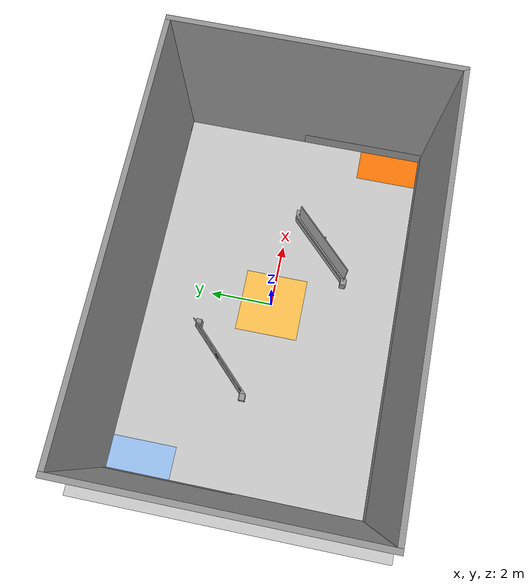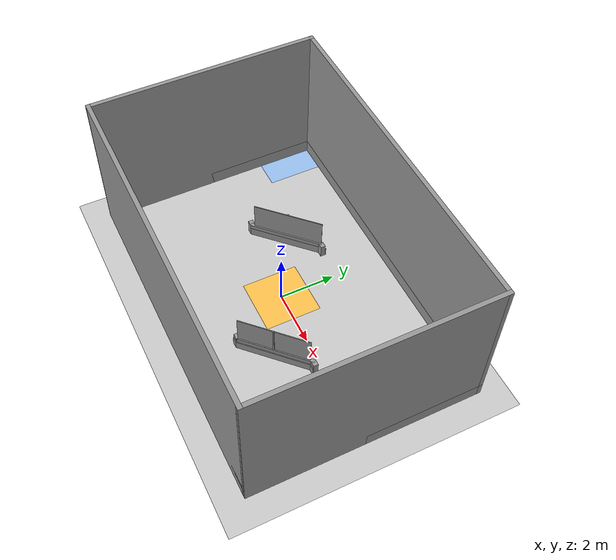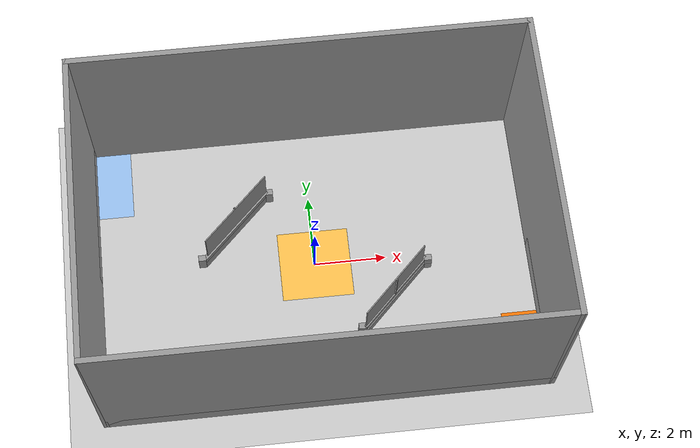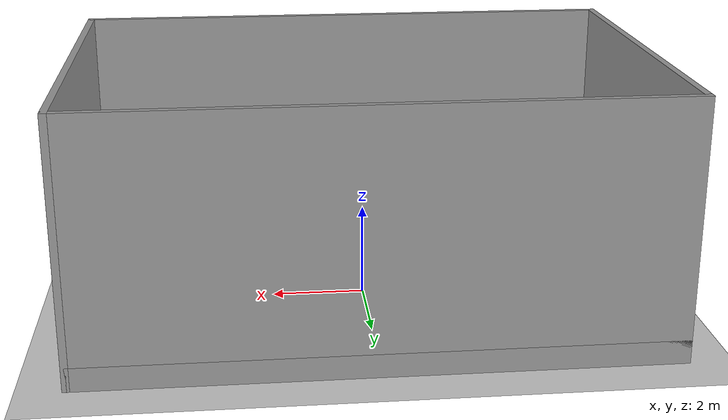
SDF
<sdf version="1.7">
 <world name="default">
  <light name="sun" type="directional">
   <pose>0 0 10 0 -0 0</pose>
   <diffuse>0.8 0.8 0.8 1</diffuse>
   <specular>0.2 0.2 0.2 1</specular>
   <attenuation>
    <range>1000</range>
    <constant>0.9</constant>
    <linear>0.01</linear>
    <quadratic>0.001</quadratic>
   </attenuation>
   <direction>-0.5 0.1 -0.9</direction>
   <spot><inner_angle>0</inner_angle><outer_angle>0</outer_angle><falloff>0</falloff></spot>
  </light>
  <model name="ground_plane">
   <static>1</static>
   <link name="link">
    <collision name="collision">
     <geometry><plane><normal>0 0 1</normal><size>100 100</size></plane></geometry>
     <surface><friction><ode><mu>100</mu><mu2>50</mu2></ode></friction></surface>
    </collision>
    <visual name="visual">
     <cast_shadows>0</cast_shadows>
     <geometry><plane><normal>0 0 1</normal><size>100 100</size></plane></geometry>
     <material>
      <script><uri>file://media/materials/scripts/gazebo.material</uri><name>Gazebo/Grey</name></script>
     </material>
    </visual>
   </link>
  </model>
  <gravity>0 0 -9.8</gravity>
  <magnetic_field>6e-06 2.3e-05 -4.2e-05</magnetic_field>
  <atmosphere type="adiabatic"/>
  <physics type="ode">
   <max_step_size>0.001</max_step_size>
   <real_time_factor>1</real_time_factor>
   <real_time_update_rate>1000</real_time_update_rate>
  </physics>
  <scene><ambient>0.4 0.4 0.4 1</ambient><background>0.7 0.7 0.7 1</background><shadows>1</shadows></scene>
  <audio><device>default</device></audio>
  <spherical_coordinates>
   <surface_model>EARTH_WGS84</surface_model>
   <latitude_deg>0</latitude_deg>
   <longitude_deg>0</longitude_deg>
   <elevation>0</elevation>
   <heading_deg>0</heading_deg>
  </spherical_coordinates>
  <model name="rmulout1.0">
   <link name="Wall_1">
    <collision name="Wall_1_Collision">
     <geometry><box><size>8.3 0.15 0.5</size></box></geometry>
     <pose>0 0 0.25 0 -0 0</pose>
    </collision>
    <visual name="Wall_1_Visual">
     <pose>0 0 0.25 0 -0 0</pose>
     <geometry><box><size>8.3 0.15 0.5</size></box></geometry>
     <material>
      <script><uri>file://media/materials/scripts/gazebo.material</uri><name>Gazebo/Grey</name></script>
      <ambient>1 1 1 1</ambient>
     </material>
     <meta><layer>0</layer></meta>
    </visual>
    <pose>-6.075 0 0 0 -0 -1.5708</pose>
   </link>
   <link name="Wall_2">
    <collision name="Wall_2_Collision">
     <geometry><box><size>12.3 0.15 0.5</size></box></geometry>
     <pose>0 0 0.25 0 -0 0</pose>
    </collision>
    <visual name="Wall_2_Visual">
     <pose>0 0 0.25 0 -0 0</pose>
     <geometry><box><size>12.3 0.15 0.5</size></box></geometry>
     <material>
      <script><uri>file://media/materials/scripts/gazebo.material</uri><name>Gazebo/Grey</name></script>
      <ambient>1 1 1 1</ambient>
     </material>
     <meta><layer>0</layer></meta>
    </visual>
    <pose>-0 -4.075 0 0 -0 0</pose>
   </link>
   <link name="Wall_3">
    <collision name="Wall_3_Collision">
     <geometry><box><size>8.3 0.15 0.5</size></box></geometry>
     <pose>0 0 0.25 0 -0 0</pose>
    </collision>
    <visual name="Wall_3_Visual">
     <pose>0 0 0.25 0 -0 0</pose>
     <geometry><box><size>8.3 0.15 0.5</size></box></geometry>
     <material>
      <script><uri>file://media/materials/scripts/gazebo.material</uri><name>Gazebo/Grey</name></script>
      <ambient>1 1 1 1</ambient>
     </material>
     <meta><layer>0</layer></meta>
    </visual>
    <pose>6.075 0 0 0 -0 1.5708</pose>
   </link>
   <link name="Wall_4">
    <collision name="Wall_4_Collision">
     <geometry><box><size>12.3 0.15 0.5</size></box></geometry>
     <pose>0 0 0.25 0 -0 0</pose>
    </collision>
    <visual name="Wall_4_Visual">
     <pose>0 0 0.25 0 -0 0</pose>
     <geometry><box><size>12.3 0.15 0.5</size></box></geometry>
     <material>
      <script><uri>file://media/materials/scripts/gazebo.material</uri><name>Gazebo/Grey</name></script>
      <ambient>1 1 1 1</ambient>
     </material>
     <meta><layer>0</layer></meta>
    </visual>
    <pose>-0 4.075 0 0 -0 3.14159</pose>
   </link>
   <static>1</static>
  </model>
  <model name="zhangai2">
   <pose>-1.24615 2.78058 0 0 -0 0</pose>
   <link name="Wall_0">
    <collision name="Wall_0_Collision">
     <geometry><box><size>2.72964 0.15 0.33</size></box></geometry>
     <pose>0 0 0.165 0 -0 0</pose>
    </collision>
    <visual name="Wall_0_Visual">
     <pose>0 0 0.165 0 -0 0</pose>
     <geometry><box><size>2.72964 0.15 0.33</size></box></geometry>
     <material>
      <script><uri>file://media/materials/scripts/gazebo.material</uri><name>Gazebo/Grey</name></script>
      <ambient>1 1 1 1</ambient>
     </material>
     <meta><layer>0</layer></meta>
    </visual>
    <pose>-0.876987 -1.54293 0 0 -0 0.785398</pose>
   </link>
   <link name="Wall_11">
    <collision name="Wall_11_Collision">
     <geometry><box><size>2.69953 0.12 0.5</size></box></geometry>
     <pose>0 0 0.25 0 -0 0</pose>
    </collision>
    <visual name="Wall_11_Visual">
     <pose>0 0 0.25 0 -0 0</pose>
     <geometry><box><size>2.69953 0.12 0.5</size></box></geometry>
     <material>
      <script><uri>file://media/materials/scripts/gazebo.material</uri><name>Gazebo/Grey</name></script>
      <ambient>1 1 1 1</ambient>
     </material>
     <meta><layer>0</layer></meta>
    </visual>
    <pose>-0.877051 -1.56409 0 0 -0 0.785398</pose>
   </link>
   <link name="Wall_13">
    <collision name="Wall_13_Collision">
     <geometry><box><size>0.21 0.17 0.5</size></box></geometry>
     <pose>0 0 0.25 0 -0 0</pose>
    </collision>
    <visual name="Wall_13_Visual">
     <pose>0 0 0.25 0 -0 0</pose>
     <geometry><box><size>0.21 0.17 0.5</size></box></geometry>
     <material>
      <script><uri>file://media/materials/scripts/gazebo.material</uri><name>Gazebo/Grey</name></script>
      <ambient>1 1 1 1</ambient>
     </material>
     <meta><layer>0</layer></meta>
    </visual>
    <pose>0.1407 -0.640186 0 0 -0 0</pose>
   </link>
   <link name="Wall_15">
    <collision name="Wall_15_Collision">
     <geometry><box><size>2.536 0.03 1.529</size></box></geometry>
     <pose>0 0 0.7645 0 -0 0</pose>
    </collision>
    <visual name="Wall_15_Visual">
     <pose>0 0 0.7645 0 -0 0</pose>
     <geometry><box><size>2.536 0.03 1.529</size></box></geometry>
     <material>
      <script><uri>file://media/materials/scripts/gazebo.material</uri><name>Gazebo/Grey</name></script>
      <ambient>1 1 1 1</ambient>
     </material>
     <meta><layer>0</layer></meta>
    </visual>
    <pose>-0.839443 -1.51801 0 0 -0 0.785398</pose>
   </link>
   <link name="Wall_19">
    <collision name="Wall_19_Collision">
     <geometry><box><size>0.02 0.01 1.529</size></box></geometry>
     <pose>0 0 0.7645 0 -0 0</pose>
    </collision>
    <visual name="Wall_19_Visual">
     <pose>0 0 0.7645 0 -0 0</pose>
     <geometry><box><size>0.02 0.01 1.529</size></box></geometry>
     <material>
      <script><uri>file://media/materials/scripts/gazebo.material</uri><name>Gazebo/Grey</name></script>
      <ambient>1 1 1 1</ambient>
     </material>
     <meta><layer>0</layer></meta>
    </visual>
    <pose>-0.870111 -1.51061 0 0 -0 -2.87979</pose>
   </link>
   <link name="Wall_2">
    <collision name="Wall_2_Collision">
     <geometry><box><size>0.21 0.2 0.33</size></box></geometry>
     <pose>0 0 0.165 0 -0 0</pose>
    </collision>
    <visual name="Wall_2_Visual">
     <pose>0 0 0.165 0 -0 0</pose>
     <geometry><box><size>0.21 0.2 0.33</size></box></geometry>
     <material>
      <script><uri>file://media/materials/scripts/gazebo.material</uri><name>Gazebo/Grey</name></script>
      <ambient>1 1 1 1</ambient>
     </material>
     <meta><layer>0</layer></meta>
    </visual>
    <pose>0.140013 -0.624864 0 0 -0 3.14159</pose>
   </link>
   <link name="Wall_4">
    <collision name="Wall_4_Collision">
     <geometry><box><size>0.21 0.2 0.33</size></box></geometry>
     <pose>0 0 0.165 0 -0 0</pose>
    </collision>
    <visual name="Wall_4_Visual">
     <pose>0 0 0.165 0 -0 0</pose>
     <geometry><box><size>0.21 0.2 0.33</size></box></geometry>
     <material>
      <script><uri>file://media/materials/scripts/gazebo.material</uri><name>Gazebo/Grey</name></script>
      <ambient>1 1 1 1</ambient>
     </material>
     <meta><layer>0</layer></meta>
    </visual>
    <pose>-1.89399 -2.461 0 0 -0 0</pose>
   </link>
   <link name="Wall_9">
    <collision name="Wall_9_Collision">
     <geometry><box><size>0.21 0.17 0.5</size></box></geometry>
     <pose>0 0 0.25 0 -0 0</pose>
    </collision>
    <visual name="Wall_9_Visual">
     <pose>0 0 0.25 0 -0 0</pose>
     <geometry><box><size>0.21 0.17 0.5</size></box></geometry>
     <material>
      <script><uri>file://media/materials/scripts/gazebo.material</uri><name>Gazebo/Grey</name></script>
      <ambient>1 1 1 1</ambient>
     </material>
     <meta><layer>0</layer></meta>
    </visual>
    <pose>-1.89401 -2.47607 0 0 -0 0</pose>
   </link>
   <static>1</static>
  </model>
  <model name="zhangai2_0">
   <pose>1.24103 -2.7792 0 0 -0 3.14</pose>
   <link name="Wall_0">
    <collision name="Wall_0_Collision">
     <geometry><box><size>2.72964 0.15 0.33</size></box></geometry>
     <pose>0 0 0.165 0 -0 0</pose>
    </collision>
    <visual name="Wall_0_Visual">
     <pose>0 0 0.165 0 -0 0</pose>
     <geometry><box><size>2.72964 0.15 0.33</size></box></geometry>
     <material>
      <script><uri>file://media/materials/scripts/gazebo.material</uri><name>Gazebo/Grey</name></script>
      <ambient>1 1 1 1</ambient>
     </material>
     <meta><layer>0</layer></meta>
    </visual>
    <pose>-0.876987 -1.54293 0 0 -0 0.785398</pose>
   </link>
   <link name="Wall_11">
    <collision name="Wall_11_Collision">
     <geometry><box><size>2.69953 0.12 0.5</size></box></geometry>
     <pose>0 0 0.25 0 -0 0</pose>
    </collision>
    <visual name="Wall_11_Visual">
     <pose>0 0 0.25 0 -0 0</pose>
     <geometry><box><size>2.69953 0.12 0.5</size></box></geometry>
     <material>
      <script><uri>file://media/materials/scripts/gazebo.material</uri><name>Gazebo/Grey</name></script>
      <ambient>1 1 1 1</ambient>
     </material>
     <meta><layer>0</layer></meta>
    </visual>
    <pose>-0.877051 -1.56409 0 0 -0 0.785398</pose>
   </link>
   <link name="Wall_13">
    <collision name="Wall_13_Collision">
     <geometry><box><size>0.21 0.17 0.5</size></box></geometry>
     <pose>0 0 0.25 0 -0 0</pose>
    </collision>
    <visual name="Wall_13_Visual">
     <pose>0 0 0.25 0 -0 0</pose>
     <geometry><box><size>0.21 0.17 0.5</size></box></geometry>
     <material>
      <script><uri>file://media/materials/scripts/gazebo.material</uri><name>Gazebo/Grey</name></script>
      <ambient>1 1 1 1</ambient>
     </material>
     <meta><layer>0</layer></meta>
    </visual>
    <pose>0.1407 -0.640186 0 0 -0 0</pose>
   </link>
   <link name="Wall_15">
    <collision name="Wall_15_Collision">
     <geometry><box><size>2.536 0.03 1.529</size></box></geometry>
     <pose>0 0 0.7645 0 -0 0</pose>
    </collision>
    <visual name="Wall_15_Visual">
     <pose>0 0 0.7645 0 -0 0</pose>
     <geometry><box><size>2.536 0.03 1.529</size></box></geometry>
     <material>
      <script><uri>file://media/materials/scripts/gazebo.material</uri><name>Gazebo/Grey</name></script>
      <ambient>1 1 1 1</ambient>
     </material>
     <meta><layer>0</layer></meta>
    </visual>
    <pose>-0.839443 -1.51801 0 0 -0 0.785398</pose>
   </link>
   <link name="Wall_19">
    <collision name="Wall_19_Collision">
     <geometry><box><size>0.02 0.01 1.529</size></box></geometry>
     <pose>0 0 0.7645 0 -0 0</pose>
    </collision>
    <visual name="Wall_19_Visual">
     <pose>0 0 0.7645 0 -0 0</pose>
     <geometry><box><size>0.02 0.01 1.529</size></box></geometry>
     <material>
      <script><uri>file://media/materials/scripts/gazebo.material</uri><name>Gazebo/Grey</name></script>
      <ambient>1 1 1 1</ambient>
     </material>
     <meta><layer>0</layer></meta>
    </visual>
    <pose>-0.870111 -1.51061 0 0 -0 -2.87979</pose>
   </link>
   <link name="Wall_2">
    <collision name="Wall_2_Collision">
     <geometry><box><size>0.21 0.2 0.33</size></box></geometry>
     <pose>0 0 0.165 0 -0 0</pose>
    </collision>
    <visual name="Wall_2_Visual">
     <pose>0 0 0.165 0 -0 0</pose>
     <geometry><box><size>0.21 0.2 0.33</size></box></geometry>
     <material>
      <script><uri>file://media/materials/scripts/gazebo.material</uri><name>Gazebo/Grey</name></script>
      <ambient>1 1 1 1</ambient>
     </material>
     <meta><layer>0</layer></meta>
    </visual>
    <pose>0.140013 -0.624864 0 0 -0 3.14159</pose>
   </link>
   <link name="Wall_4">
    <collision name="Wall_4_Collision">
     <geometry><box><size>0.21 0.2 0.33</size></box></geometry>
     <pose>0 0 0.165 0 -0 0</pose>
    </collision>
    <visual name="Wall_4_Visual">
     <pose>0 0 0.165 0 -0 0</pose>
     <geometry><box><size>0.21 0.2 0.33</size></box></geometry>
     <material>
      <script><uri>file://media/materials/scripts/gazebo.material</uri><name>Gazebo/Grey</name></script>
      <ambient>1 1 1 1</ambient>
     </material>
     <meta><layer>0</layer></meta>
    </visual>
    <pose>-1.89399 -2.461 0 0 -0 0</pose>
   </link>
   <link name="Wall_9">
    <collision name="Wall_9_Collision">
     <geometry><box><size>0.21 0.17 0.5</size></box></geometry>
     <pose>0 0 0.25 0 -0 0</pose>
    </collision>
    <visual name="Wall_9_Visual">
     <pose>0 0 0.25 0 -0 0</pose>
     <geometry><box><size>0.21 0.17 0.5</size></box></geometry>
     <material>
      <script><uri>file://media/materials/scripts/gazebo.material</uri><name>Gazebo/Grey</name></script>
      <ambient>1 1 1 1</ambient>
     </material>
     <meta><layer>0</layer></meta>
    </visual>
    <pose>-1.89401 -2.47607 0 0 -0 0</pose>
   </link>
   <static>1</static>
  </model>
  <model name="gan">
   <pose>-0.438841 -1.34627 0 0 -0 2.35619</pose>
   <link name="Wall_0">
    <collision name="Wall_0_Collision">
     <geometry><box><size>0.05 0.04 1.529</size></box></geometry>
     <pose>0 0 0.7645 0 -0 0</pose>
    </collision>
    <visual name="Wall_0_Visual">
     <pose>0 0 0.7645 0 -0 0</pose>
     <geometry><box><size>0.05 0.04 1.529</size></box></geometry>
     <material>
      <script><uri>file://media/materials/scripts/gazebo.material</uri><name>Gazebo/Grey</name></script>
      <ambient>1 1 1 1</ambient>
     </material>
     <meta><layer>0</layer></meta>
    </visual>
    <pose>-1.7515 -1.841 0 0 -0 0</pose>
   </link>
   <static>1</static>
  </model>
  <model name="gan_0">
   <pose>-4.64525 1.21456 0 0 -0 2.35619</pose>
   <link name="Wall_0">
    <collision name="Wall_0_Collision">
     <geometry><box><size>0.05 0.04 1.529</size></box></geometry>
     <pose>0 0 0.7645 0 -0 0</pose>
    </collision>
    <visual name="Wall_0_Visual">
     <pose>0 0 0.7645 0 -0 0</pose>
     <geometry><box><size>0.05 0.04 1.529</size></box></geometry>
     <material>
      <script><uri>file://media/materials/scripts/gazebo.material</uri><name>Gazebo/Grey</name></script>
      <ambient>1 1 1 1</ambient>
     </material>
     <meta><layer>0</layer></meta>
    </visual>
    <pose>-1.7515 -1.841 0 0 -0 0</pose>
   </link>
   <static>1</static>
  </model>
  <model name="redhome">
   <pose>6.66415 -1.17138 0 0 -0 0</pose>
   <link name="Wall_6">
    <collision name="Wall_6_Collision"><geometry><box><size>2 1 0</size></box></geometry></collision>
    <visual name="Wall_6_Visual">
     <geometry><box><size>2 1 0</size></box></geometry>
     <material>
      <script><uri>file://media/materials/scripts/gazebo.material</uri><name>Gazebo/Grey</name></script>
      <ambient>0.996078 0.47451 0.0196078 1</ambient>
     </material>
     <meta><layer>0</layer></meta>
    </visual>
    <pose>-1.1611 -1.82804 0 0 -0 -1.5708</pose>
   </link>
   <static>1</static>
  </model>
  <model name="mid_0">
   <pose>0.336005 2.63148 0 0 -0 0</pose>
   <link name="Wall_8">
    <collision name="Wall_8_Collision"><geometry><box><size>2.01 2 0</size></box></geometry></collision>
    <visual name="Wall_8_Visual">
     <geometry><box><size>2.01 2 0</size></box></geometry>
     <material>
      <script><uri>file://media/materials/scripts/gazebo.material</uri><name>Gazebo/Grey</name></script>
      <ambient>1 0.764706 0.305882 1</ambient>
     </material>
     <meta><layer>0</layer></meta>
    </visual>
    <pose>-0.329932 -2.63111 0 0 -0 -1.5708</pose>
   </link>
   <static>1</static>
  </model>
  <model name="bluehome">
   <pose>0.78803 5.83596 0 0 -0 0</pose>
   <link name="Wall_10">
    <collision name="Wall_10_Collision"><geometry><box><size>2 1 0</size></box></geometry></collision>
    <visual name="Wall_10_Visual">
     <geometry><box><size>2 1 0</size></box></geometry>
     <material>
      <script><uri>file://media/materials/scripts/gazebo.material</uri><name>Gazebo/Grey</name></script>
      <ambient>0.6 0.756863 0.945098 1</ambient>
     </material>
     <meta><layer>0</layer></meta>
    </visual>
    <pose>-6.29355 -2.83548 0 0 -0 -1.5708</pose>
   </link>
   <static>1</static>
  </model>
  <model name="out1.1">
   <link name="Wall_13">
    <collision name="Wall_13_Collision">
     <geometry><box><size>8.3 0.15 5.5</size></box></geometry>
     <pose>0 0 2.75 0 -0 0</pose>
    </collision>
    <visual name="Wall_13_Visual">
     <pose>0 0 2.75 0 -0 0</pose>
     <geometry><box><size>8.3 0.15 5.5</size></box></geometry>
     <material>
      <script><uri>file://media/materials/scripts/gazebo.material</uri><name>Gazebo/Grey</name></script>
      <ambient>1 1 1 1</ambient>
     </material>
     <meta><layer>0</layer></meta>
    </visual>
    <pose>-6.075 0 0 0 -0 -1.57078</pose>
   </link>
   <link name="Wall_16">
    <collision name="Wall_16_Collision">
     <geometry><box><size>12.3 0.15 5.5</size></box></geometry>
     <pose>0 0 2.75 0 -0 0</pose>
    </collision>
    <visual name="Wall_16_Visual">
     <pose>0 0 2.75 0 -0 0</pose>
     <geometry><box><size>12.3 0.15 5.5</size></box></geometry>
     <material>
      <script><uri>file://media/materials/scripts/gazebo.material</uri><name>Gazebo/Grey</name></script>
      <ambient>1 1 1 1</ambient>
     </material>
     <meta><layer>0</layer></meta>
    </visual>
    <pose>8.7e-05 -4.075 0 0 -0 0</pose>
   </link>
   <link name="Wall_18">
    <collision name="Wall_18_Collision">
     <geometry><box><size>8.3 0.15 5.5</size></box></geometry>
     <pose>0 0 2.75 0 -0 0</pose>
    </collision>
    <visual name="Wall_18_Visual">
     <pose>0 0 2.75 0 -0 0</pose>
     <geometry><box><size>8.3 0.15 5.5</size></box></geometry>
     <material>
      <script><uri>file://media/materials/scripts/gazebo.material</uri><name>Gazebo/Grey</name></script>
      <ambient>1 1 1 1</ambient>
     </material>
     <meta><layer>0</layer></meta>
    </visual>
    <pose>6.075 0 0 0 -0 1.57082</pose>
   </link>
   <link name="Wall_20">
    <collision name="Wall_20_Collision">
     <geometry><box><size>12.3 0.15 5.5</size></box></geometry>
     <pose>0 0 2.75 0 -0 0</pose>
    </collision>
    <visual name="Wall_20_Visual">
     <pose>0 0 2.75 0 -0 0</pose>
     <geometry><box><size>12.3 0.15 5.5</size></box></geometry>
     <material>
      <script><uri>file://media/materials/scripts/gazebo.material</uri><name>Gazebo/Grey</name></script>
      <ambient>1 1 1 1</ambient>
     </material>
     <meta><layer>0</layer></meta>
    </visual>
    <pose>-8.7e-05 4.075 0 0 -0 3.14159</pose>
   </link>
   <static>1</static>
  </model>
 </world>
</sdf>
